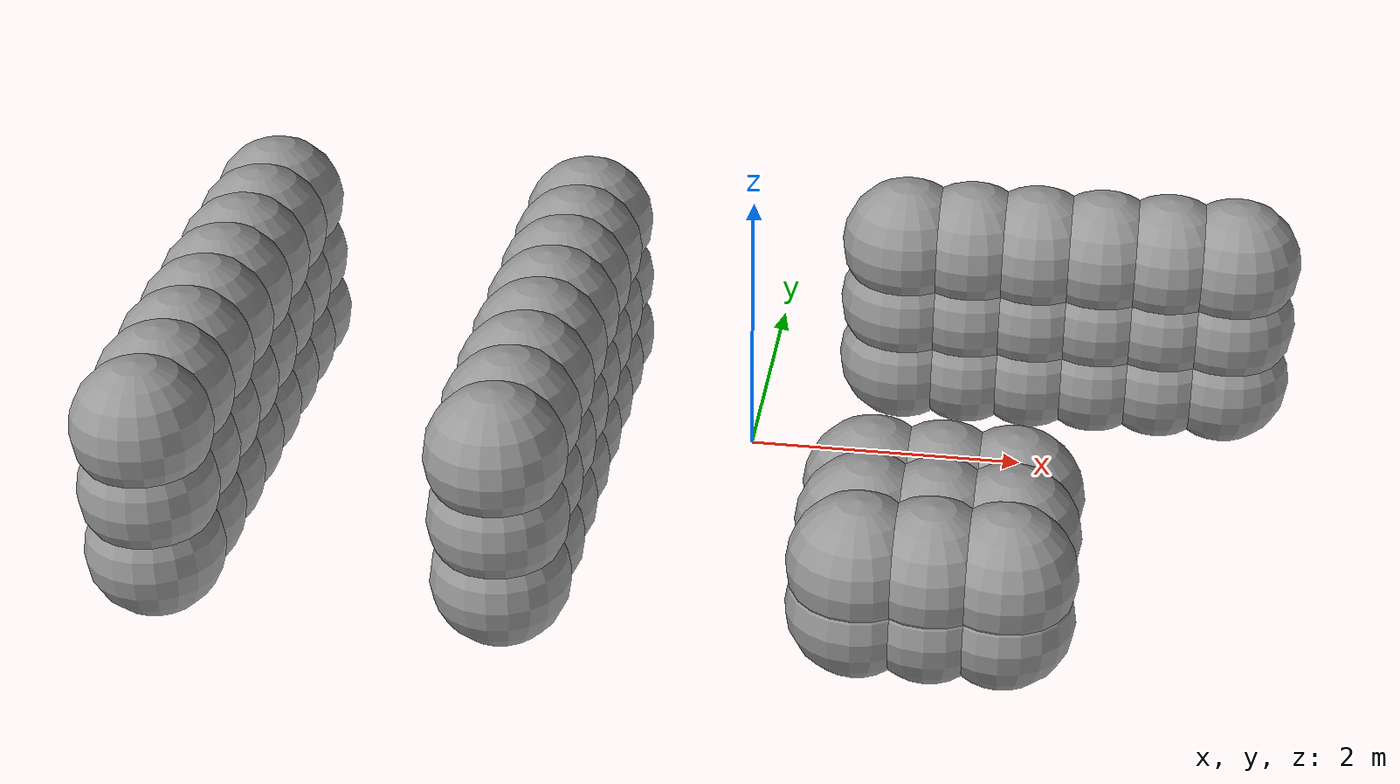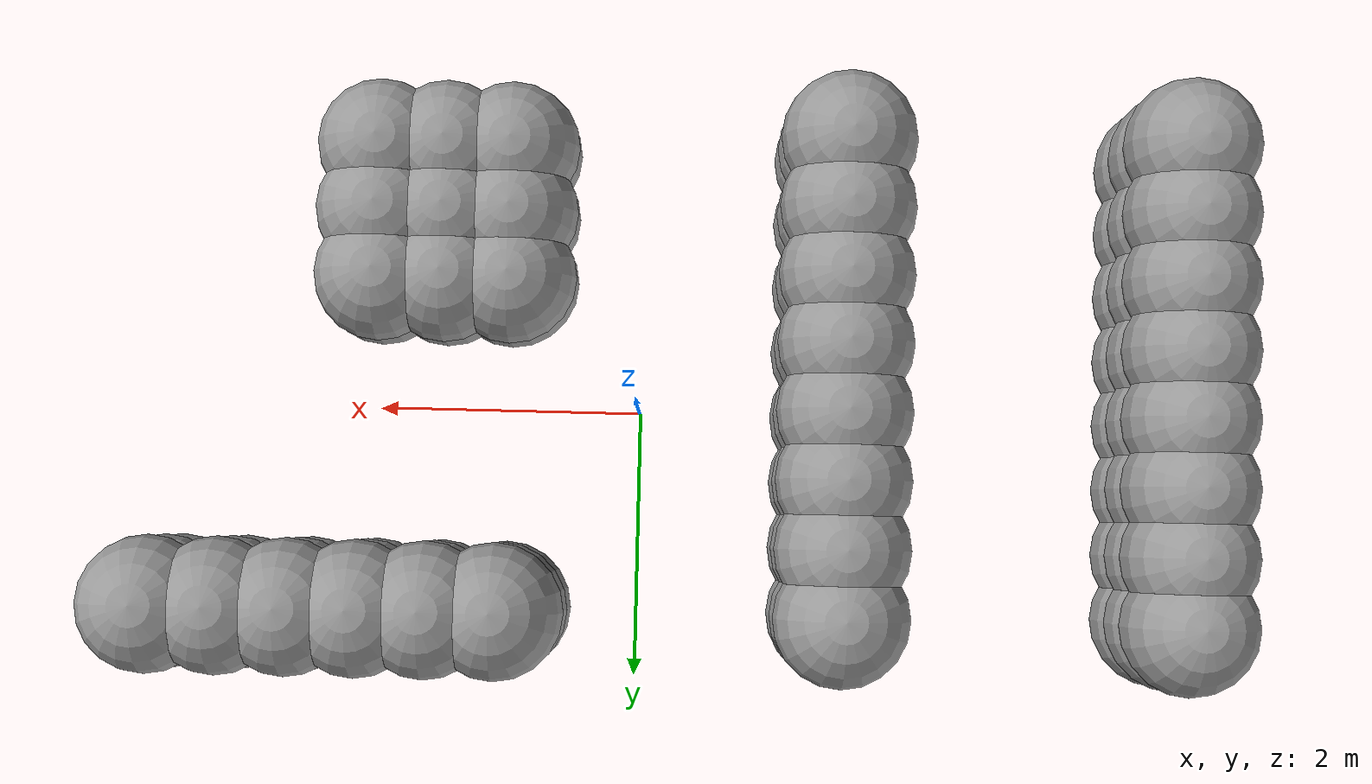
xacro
<?xml version="1.0"?>
<robot name="robot" xmlns:xacro="http://www.ros.org/wiki/xacro">

  <xacro:include filename="$(find mobile_manipulator)/world/urdf/sphere.xacro"/>

  <link name="world"/>

  <xacro:spawn_sphere sphere_name="sphere_0" r="50" xyz="-4 1.5 0"/>
  <xacro:spawn_sphere sphere_name="sphere_1" r="50" xyz="-4 1.5 0.5"/>
  <xacro:spawn_sphere sphere_name="sphere_2" r="50" xyz="-4 1.5 1"/>
  <xacro:spawn_sphere sphere_name="sphere_3" r="50" xyz="-4 1.0 0"/>
  <xacro:spawn_sphere sphere_name="sphere_4" r="50" xyz="-4 1.0 0.5"/>
  <xacro:spawn_sphere sphere_name="sphere_5" r="50" xyz="-4 1.0 1"/>
  <xacro:spawn_sphere sphere_name="sphere_6" r="50" xyz="-4 0.5 0"/>
  <xacro:spawn_sphere sphere_name="sphere_7" r="50" xyz="-4 0.5 0.5"/>
  <xacro:spawn_sphere sphere_name="sphere_8" r="50" xyz="-4 0.5 1"/>
  <xacro:spawn_sphere sphere_name="sphere_9" r="50" xyz="-4 0.0 0"/>
  <xacro:spawn_sphere sphere_name="sphere_10" r="50" xyz="-4 0.0 0.5"/>
  <xacro:spawn_sphere sphere_name="sphere_11" r="50" xyz="-4 0.0 1"/>
  <xacro:spawn_sphere sphere_name="sphere_12" r="50" xyz="-4 -0.5 0"/>
  <xacro:spawn_sphere sphere_name="sphere_13" r="50" xyz="-4 -0.5 0.5"/>
  <xacro:spawn_sphere sphere_name="sphere_14" r="50" xyz="-4 -0.5 1"/>
  <xacro:spawn_sphere sphere_name="sphere_15" r="50" xyz="-4 -1.0 0"/>
  <xacro:spawn_sphere sphere_name="sphere_16" r="50" xyz="-4 -1.0 0.5"/>
  <xacro:spawn_sphere sphere_name="sphere_17" r="50" xyz="-4 -1.0 1"/>
  <xacro:spawn_sphere sphere_name="sphere_18" r="50" xyz="-4 -1.5 0"/>
  <xacro:spawn_sphere sphere_name="sphere_19" r="50" xyz="-4 -1.5 0.5"/>
  <xacro:spawn_sphere sphere_name="sphere_20" r="50" xyz="-4 -1.5 1"/>
  <xacro:spawn_sphere sphere_name="sphere_21" r="50" xyz="-4 -2.0 0"/>
  <xacro:spawn_sphere sphere_name="sphere_22" r="50" xyz="-4 -2.0 0.5"/>
  <xacro:spawn_sphere sphere_name="sphere_23" r="50" xyz="-4 -2.0 1"/>

  <xacro:spawn_sphere sphere_name="sphere_24" r="50" xyz="-1.5 1.5 0"/>
  <xacro:spawn_sphere sphere_name="sphere_25" r="50" xyz="-1.5 1.5 0.5"/>
  <xacro:spawn_sphere sphere_name="sphere_26" r="50" xyz="-1.5 1.5 1"/>
  <xacro:spawn_sphere sphere_name="sphere_27" r="50" xyz="-1.5 1.0 0"/>
  <xacro:spawn_sphere sphere_name="sphere_28" r="50" xyz="-1.5 1.0 0.5"/>
  <xacro:spawn_sphere sphere_name="sphere_29" r="50" xyz="-1.5 1.0 1"/>
  <xacro:spawn_sphere sphere_name="sphere_30" r="50" xyz="-1.5 0.5 0"/>
  <xacro:spawn_sphere sphere_name="sphere_31" r="50" xyz="-1.5 0.5 0.5"/>
  <xacro:spawn_sphere sphere_name="sphere_32" r="50" xyz="-1.5 0.5 1"/>
  <xacro:spawn_sphere sphere_name="sphere_33" r="50" xyz="-1.5 0.0 0"/>
  <xacro:spawn_sphere sphere_name="sphere_34" r="50" xyz="-1.5 0.0 0.5"/>
  <xacro:spawn_sphere sphere_name="sphere_35" r="50" xyz="-1.5 0.0 1"/>
  <xacro:spawn_sphere sphere_name="sphere_36" r="50" xyz="-1.5 -0.5 0"/>
  <xacro:spawn_sphere sphere_name="sphere_37" r="50" xyz="-1.5 -0.5 0.5"/>
  <xacro:spawn_sphere sphere_name="sphere_38" r="50" xyz="-1.5 -0.5 1"/>
  <xacro:spawn_sphere sphere_name="sphere_39" r="50" xyz="-1.5 -1.0 0"/>
  <xacro:spawn_sphere sphere_name="sphere_40" r="50" xyz="-1.5 -1.0 0.5"/>
  <xacro:spawn_sphere sphere_name="sphere_41" r="50" xyz="-1.5 -1.0 1"/>
  <xacro:spawn_sphere sphere_name="sphere_42" r="50" xyz="-1.5 -1.5 0"/>
  <xacro:spawn_sphere sphere_name="sphere_43" r="50" xyz="-1.5 -1.5 0.5"/>
  <xacro:spawn_sphere sphere_name="sphere_44" r="50" xyz="-1.5 -1.5 1"/>
  <xacro:spawn_sphere sphere_name="sphere_45" r="50" xyz="-1.5 -2.0 0"/>
  <xacro:spawn_sphere sphere_name="sphere_46" r="50" xyz="-1.5 -2.0 0.5"/>
  <xacro:spawn_sphere sphere_name="sphere_47" r="50" xyz="-1.5 -2.0 1"/>

  <xacro:spawn_sphere sphere_name="sphere_48" r="50" xyz="1.0 1.5 0"/>
  <xacro:spawn_sphere sphere_name="sphere_49" r="50" xyz="1.0 1.5 0.5"/>
  <xacro:spawn_sphere sphere_name="sphere_50" r="50" xyz="1.0 1.5 1"/>
  <xacro:spawn_sphere sphere_name="sphere_51" r="50" xyz="1.5 1.5 0"/>
  <xacro:spawn_sphere sphere_name="sphere_52" r="50" xyz="1.5 1.5 0.5"/>
  <xacro:spawn_sphere sphere_name="sphere_53" r="50" xyz="1.5 1.5 1"/>
  <xacro:spawn_sphere sphere_name="sphere_54" r="50" xyz="2.0 1.5 0"/>
  <xacro:spawn_sphere sphere_name="sphere_55" r="50" xyz="2.0 1.5 0.5"/>
  <xacro:spawn_sphere sphere_name="sphere_56" r="50" xyz="2.0 1.5 1"/>
  <xacro:spawn_sphere sphere_name="sphere_57" r="50" xyz="2.5 1.5 0"/>
  <xacro:spawn_sphere sphere_name="sphere_58" r="50" xyz="2.5 1.5 0.5"/>
  <xacro:spawn_sphere sphere_name="sphere_59" r="50" xyz="2.5 1.5 1"/>
  <xacro:spawn_sphere sphere_name="sphere_60" r="50" xyz="3.0 1.5 0"/>
  <xacro:spawn_sphere sphere_name="sphere_61" r="50" xyz="3.0 1.5 0.5"/>
  <xacro:spawn_sphere sphere_name="sphere_62" r="50" xyz="3.0 1.5 1"/>
  <xacro:spawn_sphere sphere_name="sphere_63" r="50" xyz="3.5 1.5 0"/>
  <xacro:spawn_sphere sphere_name="sphere_64" r="50" xyz="3.5 1.5 0.5"/>
  <xacro:spawn_sphere sphere_name="sphere_65" r="50" xyz="3.5 1.5 1"/>

  <xacro:spawn_sphere sphere_name="sphere_66" r="50" xyz="1.0 -1.0 0"/>
  <xacro:spawn_sphere sphere_name="sphere_67" r="50" xyz="1.0 -1.0 0.35"/>
  <xacro:spawn_sphere sphere_name="sphere_68" r="50" xyz="1.5 -1.0 0"/>
  <xacro:spawn_sphere sphere_name="sphere_69" r="50" xyz="1.5 -1.0 0.35"/>
  <xacro:spawn_sphere sphere_name="sphere_70" r="50" xyz="2.0 -1.0 0"/>
  <xacro:spawn_sphere sphere_name="sphere_71" r="50" xyz="2.0 -1.0 0.35"/>
  <xacro:spawn_sphere sphere_name="sphere_72" r="50" xyz="1.0 -1.5 0"/>
  <xacro:spawn_sphere sphere_name="sphere_73" r="50" xyz="1.0 -1.5 0.35"/>
  <xacro:spawn_sphere sphere_name="sphere_74" r="50" xyz="1.5 -1.5 0"/>
  <xacro:spawn_sphere sphere_name="sphere_75" r="50" xyz="1.5 -1.5 0.35"/>
  <xacro:spawn_sphere sphere_name="sphere_76" r="50" xyz="2.0 -1.5 0"/>
  <xacro:spawn_sphere sphere_name="sphere_77" r="50" xyz="2.0 -1.5 0.35"/>
  <xacro:spawn_sphere sphere_name="sphere_78" r="50" xyz="1.0 -2.0 0"/>
  <xacro:spawn_sphere sphere_name="sphere_79" r="50" xyz="1.0 -2.0 0.35"/>
  <xacro:spawn_sphere sphere_name="sphere_80" r="50" xyz="1.5 -2.0 0"/>
  <xacro:spawn_sphere sphere_name="sphere_81" r="50" xyz="1.5 -2.0 0.35"/>
  <xacro:spawn_sphere sphere_name="sphere_82" r="50" xyz="2.0 -2.0 0"/>
  <xacro:spawn_sphere sphere_name="sphere_83" r="50" xyz="2.0 -2.0 0.35"/>

  <gazebo> <static>true</static></gazebo>
</robot>

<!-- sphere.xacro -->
<robot name="robot" xmlns:xacro="http://www.ros.org/wiki/xacro">
  <xacro:macro name="spawn_sphere" params="sphere_name:='sphere_0' r:='1' xyz:='0 0 0' rpy:='0 0 0' color:='Gray'">

  <link name="${sphere_name}">
    <inertial>
      <origin xyz="0 0 0" rpy="0 0 0"/>
      <mass value="1"/>
      <inertia ixx="1" ixy="0" ixz="0" iyy="1" iyz="0" izz="1"/>
    </inertial>
    <visual>
      <origin xyz="0 0 0" rpy="0 0 0"/>
      <geometry>
        <sphere radius="${r/100}"/>
      </geometry>
      <material name="${color}" />
    </visual>
    <collision>
      <origin xyz="0 0 0" rpy="0 0 0"/>
      <geometry>
        <sphere radius="${r/100}"/>
      </geometry>
    </collision>
  </link>
  <joint name="world_${sphere_name}_joint" type="fixed">
    <origin xyz="${xyz}" rpy="${rpy}"/>
    <parent link="world"/>
    <child link="${sphere_name}"/>
  </joint>
  <gazebo reference="${sphere_name}">
    <material>Gazebo/${color}</material>
  </gazebo>
</xacro:macro>
</robot>
